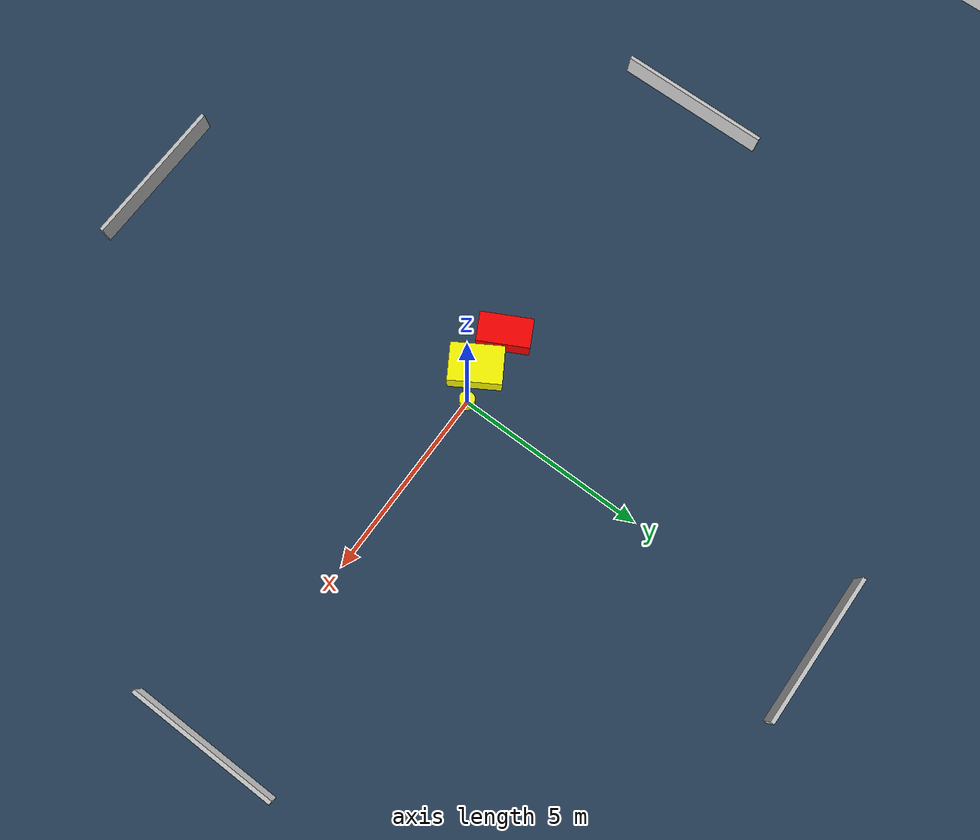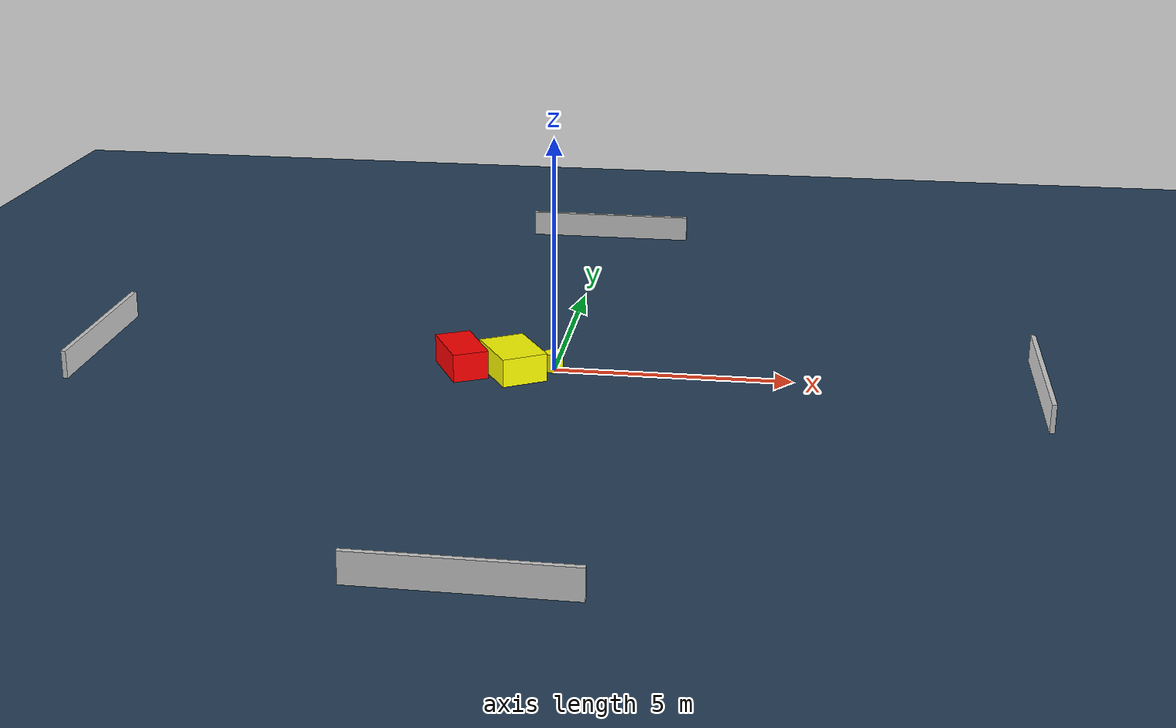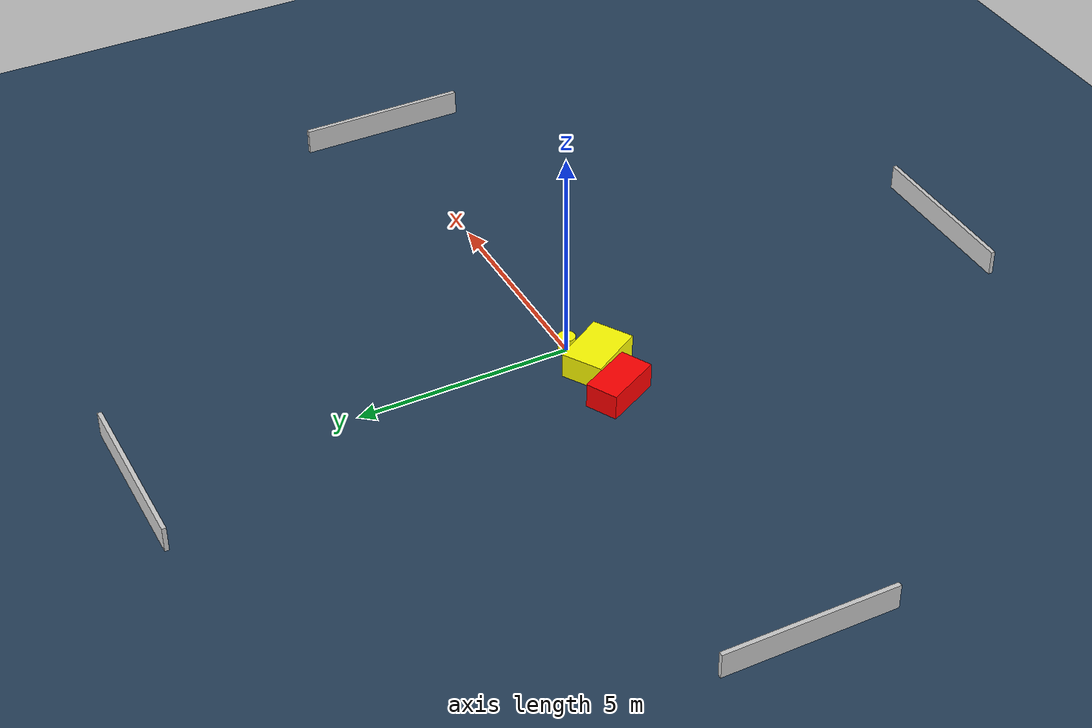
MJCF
<?xml version="1.0" ?>
<mujoco model="generated_environment">
  <option timestep="0.01" integrator="RK4" cone="elliptic"/>
  <default>
    <geom density="1"/>
  </default>
  <asset>
    <texture builtin="gradient" height="3072" name="skybox" rgb1="0.3 0.5 0.7" rgb2="0 0 0" type="skybox" width="512"/>
    <texture builtin="checker" height="300" name="groundplane" rgb1="0.2 0.3 0.4" rgb2="0.1 0.2 0.3" type="2d" width="300"/>
    <material name="groundplane" reflectance="0.2" texrepeat="5 5" texture="groundplane"/>
  </asset>
  <worldbody>
    <light dir="0 0 -1" directional="true" pos="0 0 1.5"/>
    <geom condim="3" friction="0.5 0.005 0.001" material="groundplane" name="floor" pos="0 0 0" size="0 0 0.05" type="plane"/>
    <body name="walls">
      <geom name="wall_1" condim="4" pos="-10.0 0.0 0.3" rgba="0.800000011920929 0.800000011920929 0.800000011920929 1.0" size="0.05 2.0 0.3" type="box"/>
      <geom name="wall_2" condim="4" pos="10.0 0.0 0.3" rgba="0.800000011920929 0.800000011920929 0.800000011920929 1.0" size="0.05 2.0 0.3" type="box"/>
      <geom name="wall_3" condim="4" pos="0.0 -10.0 0.3" rgba="0.800000011920929 0.800000011920929 0.800000011920929 1.0" size="2.0 0.05 0.3" type="box"/>
      <geom name="wall_4" condim="4" pos="0.0 10.0 0.3" rgba="0.800000011920929 0.800000011920929 0.800000011920929 1.0" size="2.0 0.05 0.3" type="box"/>
    </body>
    <body name="robot">
      <joint name="joint_x" type="slide" pos="0 0 0" axis="1 0 0"/>
      <joint name="joint_y" type="slide" pos="0 0 0" axis="0 1 0"/>
      <geom name="robot" type="cylinder" pos="0.0 0.0 0.2" size="0.2 0.2 0.0" mass="5.0" friction="1.0 0.005 0.0001" condim="4" rgba="1.0 1.0 0.0 1.0"/>
    </body>
    <body name="obstacle_1_movable">
      <geom name="obstacle_1_movable" condim="4" pos="-0.81839343071393 -0.3283761707466493 0.3" euler="0 0 121.23670615165419" friction="0.0 0.005 0.001" rgba="1.0 1.0 0.0 1.0" size="0.6822747216653955 0.49120292260874737 0.3" type="box" mass="0.1"/>
      <joint type="free"/>
    </body>
    <body name="obstacle_2_static">
      <geom name="obstacle_2_static" condim="4" pos="-1.9263171755504154 -0.2617509533328076 0.3" euler="0 0 207.5894488891629" friction="0.0 0.005 0.001" rgba="1.0 0.0 0.0 1.0" size="0.3815533091396893 0.6792035697278651 0.3" type="box"/>
    </body>
  </worldbody>
  <actuator>
    <motor name="actuator_x" joint="joint_x" gear="1" ctrlrange="-1 1"/>
    <motor name="actuator_y" joint="joint_y" gear="1" ctrlrange="-1 1"/>
  </actuator>
</mujoco>
